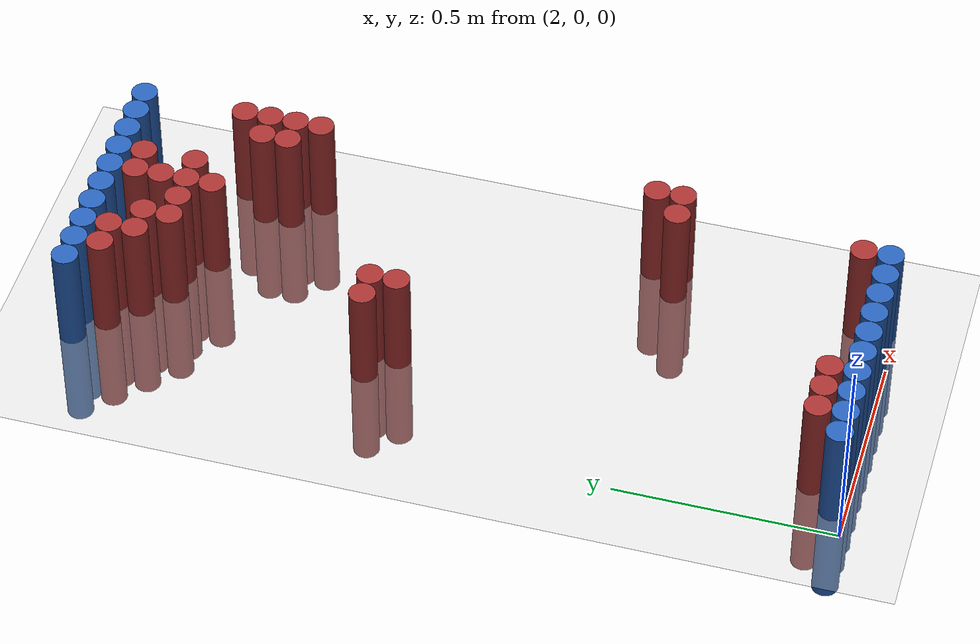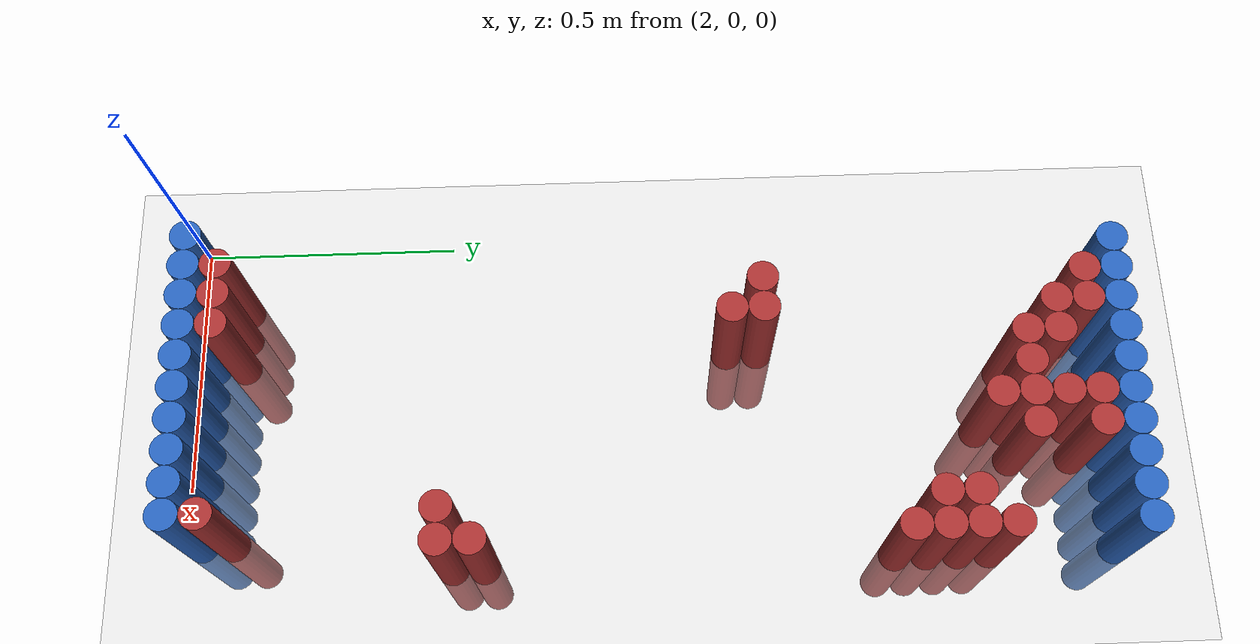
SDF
<sdf version="1.6">
 <world name="default">
  <model name="ground_plane">
   <static>1</static>
   <link name="link">
    <collision name="collision">
     <geometry><plane><normal>0 0 1</normal><size>100 100</size></plane></geometry>
     <surface><friction><ode><mu>100</mu><mu2>50</mu2></ode></friction></surface>
    </collision>
    <visual name="visual">
     <cast_shadows>0</cast_shadows>
     <geometry><plane><normal>0 0 1</normal><size>100 100</size></plane></geometry>
     <material>
      <script><uri>file://media/materials/scripts/gazebo.material</uri><name>Gazebo/Grey</name></script>
     </material>
    </visual>
   </link>
  </model>
  <model name="unit_cylinder_96">
   <static>1</static>
   <pose>2.130000 1.770000 0.000000 0.000000 0.000000 0.000000</pose>
   <link name="link">
    <inertial>
     <mass>1</mass>
     <inertia><ixx>0.145833</ixx><ixy>0</ixy><ixz>0</ixz><iyy>0.145833</iyy><iyz>0</iyz><izz>0.125</izz></inertia>
    </inertial>
    <collision name="collision">
     <geometry><cylinder><radius>0.030000</radius><length>0.5</length></cylinder></geometry>
    </collision>
    <visual name="visual">
     <geometry><cylinder><radius>0.030000</radius><length>0.5</length></cylinder></geometry>
     <material>
      <ambient>0.152000 0.379000 0.720000 1</ambient>
      <diffuse>0.152000 0.379000 0.720000 1</diffuse>
     </material>
     <material>
      <script><name>Gazebo/Grey</name><uri>file://media/materials/scripts/gazebo.material</uri></script>
     </material>
    </visual>
   </link>
  </model>
  <model name="unit_cylinder_97">
   <static>1</static>
   <pose>2.190000 1.770000 0.000000 0.000000 0.000000 0.000000</pose>
   <link name="link">
    <inertial>
     <mass>1</mass>
     <inertia><ixx>0.145833</ixx><ixy>0</ixy><ixz>0</ixz><iyy>0.145833</iyy><iyz>0</iyz><izz>0.125</izz></inertia>
    </inertial>
    <collision name="collision">
     <geometry><cylinder><radius>0.030000</radius><length>0.5</length></cylinder></geometry>
    </collision>
    <visual name="visual">
     <geometry><cylinder><radius>0.030000</radius><length>0.5</length></cylinder></geometry>
     <material>
      <ambient>0.152000 0.379000 0.720000 1</ambient>
      <diffuse>0.152000 0.379000 0.720000 1</diffuse>
     </material>
     <material>
      <script><name>Gazebo/Grey</name><uri>file://media/materials/scripts/gazebo.material</uri></script>
     </material>
    </visual>
   </link>
  </model>
  <model name="unit_cylinder_98">
   <static>1</static>
   <pose>2.250000 1.770000 0.000000 0.000000 0.000000 0.000000</pose>
   <link name="link">
    <inertial>
     <mass>1</mass>
     <inertia><ixx>0.145833</ixx><ixy>0</ixy><ixz>0</ixz><iyy>0.145833</iyy><iyz>0</iyz><izz>0.125</izz></inertia>
    </inertial>
    <collision name="collision">
     <geometry><cylinder><radius>0.030000</radius><length>0.5</length></cylinder></geometry>
    </collision>
    <visual name="visual">
     <geometry><cylinder><radius>0.030000</radius><length>0.5</length></cylinder></geometry>
     <material>
      <ambient>0.152000 0.379000 0.720000 1</ambient>
      <diffuse>0.152000 0.379000 0.720000 1</diffuse>
     </material>
     <material>
      <script><name>Gazebo/Grey</name><uri>file://media/materials/scripts/gazebo.material</uri></script>
     </material>
    </visual>
   </link>
  </model>
  <model name="unit_cylinder_99">
   <static>1</static>
   <pose>2.310000 1.770000 0.000000 0.000000 0.000000 0.000000</pose>
   <link name="link">
    <inertial>
     <mass>1</mass>
     <inertia><ixx>0.145833</ixx><ixy>0</ixy><ixz>0</ixz><iyy>0.145833</iyy><iyz>0</iyz><izz>0.125</izz></inertia>
    </inertial>
    <collision name="collision">
     <geometry><cylinder><radius>0.030000</radius><length>0.5</length></cylinder></geometry>
    </collision>
    <visual name="visual">
     <geometry><cylinder><radius>0.030000</radius><length>0.5</length></cylinder></geometry>
     <material>
      <ambient>0.152000 0.379000 0.720000 1</ambient>
      <diffuse>0.152000 0.379000 0.720000 1</diffuse>
     </material>
     <material>
      <script><name>Gazebo/Grey</name><uri>file://media/materials/scripts/gazebo.material</uri></script>
     </material>
    </visual>
   </link>
  </model>
  <model name="unit_cylinder_100">
   <static>1</static>
   <pose>2.370000 1.770000 0.000000 0.000000 0.000000 0.000000</pose>
   <link name="link">
    <inertial>
     <mass>1</mass>
     <inertia><ixx>0.145833</ixx><ixy>0</ixy><ixz>0</ixz><iyy>0.145833</iyy><iyz>0</iyz><izz>0.125</izz></inertia>
    </inertial>
    <collision name="collision">
     <geometry><cylinder><radius>0.030000</radius><length>0.5</length></cylinder></geometry>
    </collision>
    <visual name="visual">
     <geometry><cylinder><radius>0.030000</radius><length>0.5</length></cylinder></geometry>
     <material>
      <ambient>0.152000 0.379000 0.720000 1</ambient>
      <diffuse>0.152000 0.379000 0.720000 1</diffuse>
     </material>
     <material>
      <script><name>Gazebo/Grey</name><uri>file://media/materials/scripts/gazebo.material</uri></script>
     </material>
    </visual>
   </link>
  </model>
  <model name="unit_cylinder_101">
   <static>1</static>
   <pose>2.430000 1.770000 0.000000 0.000000 0.000000 0.000000</pose>
   <link name="link">
    <inertial>
     <mass>1</mass>
     <inertia><ixx>0.145833</ixx><ixy>0</ixy><ixz>0</ixz><iyy>0.145833</iyy><iyz>0</iyz><izz>0.125</izz></inertia>
    </inertial>
    <collision name="collision">
     <geometry><cylinder><radius>0.030000</radius><length>0.5</length></cylinder></geometry>
    </collision>
    <visual name="visual">
     <geometry><cylinder><radius>0.030000</radius><length>0.5</length></cylinder></geometry>
     <material>
      <ambient>0.152000 0.379000 0.720000 1</ambient>
      <diffuse>0.152000 0.379000 0.720000 1</diffuse>
     </material>
     <material>
      <script><name>Gazebo/Grey</name><uri>file://media/materials/scripts/gazebo.material</uri></script>
     </material>
    </visual>
   </link>
  </model>
  <model name="unit_cylinder_102">
   <static>1</static>
   <pose>2.490000 1.770000 0.000000 0.000000 0.000000 0.000000</pose>
   <link name="link">
    <inertial>
     <mass>1</mass>
     <inertia><ixx>0.145833</ixx><ixy>0</ixy><ixz>0</ixz><iyy>0.145833</iyy><iyz>0</iyz><izz>0.125</izz></inertia>
    </inertial>
    <collision name="collision">
     <geometry><cylinder><radius>0.030000</radius><length>0.5</length></cylinder></geometry>
    </collision>
    <visual name="visual">
     <geometry><cylinder><radius>0.030000</radius><length>0.5</length></cylinder></geometry>
     <material>
      <ambient>0.152000 0.379000 0.720000 1</ambient>
      <diffuse>0.152000 0.379000 0.720000 1</diffuse>
     </material>
     <material>
      <script><name>Gazebo/Grey</name><uri>file://media/materials/scripts/gazebo.material</uri></script>
     </material>
    </visual>
   </link>
  </model>
  <model name="unit_cylinder_103">
   <static>1</static>
   <pose>2.550000 1.770000 0.000000 0.000000 0.000000 0.000000</pose>
   <link name="link">
    <inertial>
     <mass>1</mass>
     <inertia><ixx>0.145833</ixx><ixy>0</ixy><ixz>0</ixz><iyy>0.145833</iyy><iyz>0</iyz><izz>0.125</izz></inertia>
    </inertial>
    <collision name="collision">
     <geometry><cylinder><radius>0.030000</radius><length>0.5</length></cylinder></geometry>
    </collision>
    <visual name="visual">
     <geometry><cylinder><radius>0.030000</radius><length>0.5</length></cylinder></geometry>
     <material>
      <ambient>0.152000 0.379000 0.720000 1</ambient>
      <diffuse>0.152000 0.379000 0.720000 1</diffuse>
     </material>
     <material>
      <script><name>Gazebo/Grey</name><uri>file://media/materials/scripts/gazebo.material</uri></script>
     </material>
    </visual>
   </link>
  </model>
  <model name="unit_cylinder_104">
   <static>1</static>
   <pose>2.610000 1.770000 0.000000 0.000000 0.000000 0.000000</pose>
   <link name="link">
    <inertial>
     <mass>1</mass>
     <inertia><ixx>0.145833</ixx><ixy>0</ixy><ixz>0</ixz><iyy>0.145833</iyy><iyz>0</iyz><izz>0.125</izz></inertia>
    </inertial>
    <collision name="collision">
     <geometry><cylinder><radius>0.030000</radius><length>0.5</length></cylinder></geometry>
    </collision>
    <visual name="visual">
     <geometry><cylinder><radius>0.030000</radius><length>0.5</length></cylinder></geometry>
     <material>
      <ambient>0.152000 0.379000 0.720000 1</ambient>
      <diffuse>0.152000 0.379000 0.720000 1</diffuse>
     </material>
     <material>
      <script><name>Gazebo/Grey</name><uri>file://media/materials/scripts/gazebo.material</uri></script>
     </material>
    </visual>
   </link>
  </model>
  <model name="unit_cylinder_105">
   <static>1</static>
   <pose>2.670000 1.770000 0.000000 0.000000 0.000000 0.000000</pose>
   <link name="link">
    <inertial>
     <mass>1</mass>
     <inertia><ixx>0.145833</ixx><ixy>0</ixy><ixz>0</ixz><iyy>0.145833</iyy><iyz>0</iyz><izz>0.125</izz></inertia>
    </inertial>
    <collision name="collision">
     <geometry><cylinder><radius>0.030000</radius><length>0.5</length></cylinder></geometry>
    </collision>
    <visual name="visual">
     <geometry><cylinder><radius>0.030000</radius><length>0.5</length></cylinder></geometry>
     <material>
      <ambient>0.152000 0.379000 0.720000 1</ambient>
      <diffuse>0.152000 0.379000 0.720000 1</diffuse>
     </material>
     <material>
      <script><name>Gazebo/Grey</name><uri>file://media/materials/scripts/gazebo.material</uri></script>
     </material>
    </visual>
   </link>
  </model>
  <model name="unit_cylinder_125">
   <static>1</static>
   <pose>2.190000 1.710000 0.000000 0.000000 0.000000 0.000000</pose>
   <link name="link">
    <inertial>
     <mass>1</mass>
     <inertia><ixx>0.145833</ixx><ixy>0</ixy><ixz>0</ixz><iyy>0.145833</iyy><iyz>0</iyz><izz>0.125</izz></inertia>
    </inertial>
    <collision name="collision">
     <geometry><cylinder><radius>0.030000</radius><length>0.5</length></cylinder></geometry>
    </collision>
    <visual name="visual">
     <geometry><cylinder><radius>0.030000</radius><length>0.5</length></cylinder></geometry>
     <material>
      <ambient>0.648000 0.192000 0.192000 1</ambient>
      <diffuse>0.648000 0.192000 0.192000 1</diffuse>
     </material>
     <material>
      <script><name>Gazebo/Grey</name><uri>file://media/materials/scripts/gazebo.material</uri></script>
     </material>
    </visual>
   </link>
  </model>
  <model name="unit_cylinder_126">
   <static>1</static>
   <pose>2.250000 1.710000 0.000000 0.000000 0.000000 0.000000</pose>
   <link name="link">
    <inertial>
     <mass>1</mass>
     <inertia><ixx>0.145833</ixx><ixy>0</ixy><ixz>0</ixz><iyy>0.145833</iyy><iyz>0</iyz><izz>0.125</izz></inertia>
    </inertial>
    <collision name="collision">
     <geometry><cylinder><radius>0.030000</radius><length>0.5</length></cylinder></geometry>
    </collision>
    <visual name="visual">
     <geometry><cylinder><radius>0.030000</radius><length>0.5</length></cylinder></geometry>
     <material>
      <ambient>0.648000 0.192000 0.192000 1</ambient>
      <diffuse>0.648000 0.192000 0.192000 1</diffuse>
     </material>
     <material>
      <script><name>Gazebo/Grey</name><uri>file://media/materials/scripts/gazebo.material</uri></script>
     </material>
    </visual>
   </link>
  </model>
  <model name="unit_cylinder_127">
   <static>1</static>
   <pose>2.430000 1.710000 0.000000 0.000000 0.000000 0.000000</pose>
   <link name="link">
    <inertial>
     <mass>1</mass>
     <inertia><ixx>0.145833</ixx><ixy>0</ixy><ixz>0</ixz><iyy>0.145833</iyy><iyz>0</iyz><izz>0.125</izz></inertia>
    </inertial>
    <collision name="collision">
     <geometry><cylinder><radius>0.030000</radius><length>0.5</length></cylinder></geometry>
    </collision>
    <visual name="visual">
     <geometry><cylinder><radius>0.030000</radius><length>0.5</length></cylinder></geometry>
     <material>
      <ambient>0.648000 0.192000 0.192000 1</ambient>
      <diffuse>0.648000 0.192000 0.192000 1</diffuse>
     </material>
     <material>
      <script><name>Gazebo/Grey</name><uri>file://media/materials/scripts/gazebo.material</uri></script>
     </material>
    </visual>
   </link>
  </model>
  <model name="unit_cylinder_128">
   <static>1</static>
   <pose>2.490000 1.710000 0.000000 0.000000 0.000000 0.000000</pose>
   <link name="link">
    <inertial>
     <mass>1</mass>
     <inertia><ixx>0.145833</ixx><ixy>0</ixy><ixz>0</ixz><iyy>0.145833</iyy><iyz>0</iyz><izz>0.125</izz></inertia>
    </inertial>
    <collision name="collision">
     <geometry><cylinder><radius>0.030000</radius><length>0.5</length></cylinder></geometry>
    </collision>
    <visual name="visual">
     <geometry><cylinder><radius>0.030000</radius><length>0.5</length></cylinder></geometry>
     <material>
      <ambient>0.648000 0.192000 0.192000 1</ambient>
      <diffuse>0.648000 0.192000 0.192000 1</diffuse>
     </material>
     <material>
      <script><name>Gazebo/Grey</name><uri>file://media/materials/scripts/gazebo.material</uri></script>
     </material>
    </visual>
   </link>
  </model>
  <model name="unit_cylinder_137">
   <static>1</static>
   <pose>2.250000 1.650000 0.000000 0.000000 0.000000 0.000000</pose>
   <link name="link">
    <inertial>
     <mass>1</mass>
     <inertia><ixx>0.145833</ixx><ixy>0</ixy><ixz>0</ixz><iyy>0.145833</iyy><iyz>0</iyz><izz>0.125</izz></inertia>
    </inertial>
    <collision name="collision">
     <geometry><cylinder><radius>0.030000</radius><length>0.5</length></cylinder></geometry>
    </collision>
    <visual name="visual">
     <geometry><cylinder><radius>0.030000</radius><length>0.5</length></cylinder></geometry>
     <material>
      <ambient>0.648000 0.192000 0.192000 1</ambient>
      <diffuse>0.648000 0.192000 0.192000 1</diffuse>
     </material>
     <material>
      <script><name>Gazebo/Grey</name><uri>file://media/materials/scripts/gazebo.material</uri></script>
     </material>
    </visual>
   </link>
  </model>
  <model name="unit_cylinder_138">
   <static>1</static>
   <pose>2.310000 1.650000 0.000000 0.000000 0.000000 0.000000</pose>
   <link name="link">
    <inertial>
     <mass>1</mass>
     <inertia><ixx>0.145833</ixx><ixy>0</ixy><ixz>0</ixz><iyy>0.145833</iyy><iyz>0</iyz><izz>0.125</izz></inertia>
    </inertial>
    <collision name="collision">
     <geometry><cylinder><radius>0.030000</radius><length>0.5</length></cylinder></geometry>
    </collision>
    <visual name="visual">
     <geometry><cylinder><radius>0.030000</radius><length>0.5</length></cylinder></geometry>
     <material>
      <ambient>0.648000 0.192000 0.192000 1</ambient>
      <diffuse>0.648000 0.192000 0.192000 1</diffuse>
     </material>
     <material>
      <script><name>Gazebo/Grey</name><uri>file://media/materials/scripts/gazebo.material</uri></script>
     </material>
    </visual>
   </link>
  </model>
  <model name="unit_cylinder_139">
   <static>1</static>
   <pose>2.430000 1.650000 0.000000 0.000000 0.000000 0.000000</pose>
   <link name="link">
    <inertial>
     <mass>1</mass>
     <inertia><ixx>0.145833</ixx><ixy>0</ixy><ixz>0</ixz><iyy>0.145833</iyy><iyz>0</iyz><izz>0.125</izz></inertia>
    </inertial>
    <collision name="collision">
     <geometry><cylinder><radius>0.030000</radius><length>0.5</length></cylinder></geometry>
    </collision>
    <visual name="visual">
     <geometry><cylinder><radius>0.030000</radius><length>0.5</length></cylinder></geometry>
     <material>
      <ambient>0.648000 0.192000 0.192000 1</ambient>
      <diffuse>0.648000 0.192000 0.192000 1</diffuse>
     </material>
     <material>
      <script><name>Gazebo/Grey</name><uri>file://media/materials/scripts/gazebo.material</uri></script>
     </material>
    </visual>
   </link>
  </model>
  <model name="unit_cylinder_141">
   <static>1</static>
   <pose>2.310000 1.590000 0.000000 0.000000 0.000000 0.000000</pose>
   <link name="link">
    <inertial>
     <mass>1</mass>
     <inertia><ixx>0.145833</ixx><ixy>0</ixy><ixz>0</ixz><iyy>0.145833</iyy><iyz>0</iyz><izz>0.125</izz></inertia>
    </inertial>
    <collision name="collision">
     <geometry><cylinder><radius>0.030000</radius><length>0.5</length></cylinder></geometry>
    </collision>
    <visual name="visual">
     <geometry><cylinder><radius>0.030000</radius><length>0.5</length></cylinder></geometry>
     <material>
      <ambient>0.648000 0.192000 0.192000 1</ambient>
      <diffuse>0.648000 0.192000 0.192000 1</diffuse>
     </material>
     <material>
      <script><name>Gazebo/Grey</name><uri>file://media/materials/scripts/gazebo.material</uri></script>
     </material>
    </visual>
   </link>
  </model>
  <model name="unit_cylinder_142">
   <static>1</static>
   <pose>2.370000 1.590000 0.000000 0.000000 0.000000 0.000000</pose>
   <link name="link">
    <inertial>
     <mass>1</mass>
     <inertia><ixx>0.145833</ixx><ixy>0</ixy><ixz>0</ixz><iyy>0.145833</iyy><iyz>0</iyz><izz>0.125</izz></inertia>
    </inertial>
    <collision name="collision">
     <geometry><cylinder><radius>0.030000</radius><length>0.5</length></cylinder></geometry>
    </collision>
    <visual name="visual">
     <geometry><cylinder><radius>0.030000</radius><length>0.5</length></cylinder></geometry>
     <material>
      <ambient>0.648000 0.192000 0.192000 1</ambient>
      <diffuse>0.648000 0.192000 0.192000 1</diffuse>
     </material>
     <material>
      <script><name>Gazebo/Grey</name><uri>file://media/materials/scripts/gazebo.material</uri></script>
     </material>
    </visual>
   </link>
  </model>
  <model name="unit_cylinder_143">
   <static>1</static>
   <pose>2.430000 1.590000 0.000000 0.000000 0.000000 0.000000</pose>
   <link name="link">
    <inertial>
     <mass>1</mass>
     <inertia><ixx>0.145833</ixx><ixy>0</ixy><ixz>0</ixz><iyy>0.145833</iyy><iyz>0</iyz><izz>0.125</izz></inertia>
    </inertial>
    <collision name="collision">
     <geometry><cylinder><radius>0.030000</radius><length>0.5</length></cylinder></geometry>
    </collision>
    <visual name="visual">
     <geometry><cylinder><radius>0.030000</radius><length>0.5</length></cylinder></geometry>
     <material>
      <ambient>0.648000 0.192000 0.192000 1</ambient>
      <diffuse>0.648000 0.192000 0.192000 1</diffuse>
     </material>
     <material>
      <script><name>Gazebo/Grey</name><uri>file://media/materials/scripts/gazebo.material</uri></script>
     </material>
    </visual>
   </link>
  </model>
  <model name="unit_cylinder_144">
   <static>1</static>
   <pose>2.490000 1.590000 0.000000 0.000000 0.000000 0.000000</pose>
   <link name="link">
    <inertial>
     <mass>1</mass>
     <inertia><ixx>0.145833</ixx><ixy>0</ixy><ixz>0</ixz><iyy>0.145833</iyy><iyz>0</iyz><izz>0.125</izz></inertia>
    </inertial>
    <collision name="collision">
     <geometry><cylinder><radius>0.030000</radius><length>0.5</length></cylinder></geometry>
    </collision>
    <visual name="visual">
     <geometry><cylinder><radius>0.030000</radius><length>0.5</length></cylinder></geometry>
     <material>
      <ambient>0.648000 0.192000 0.192000 1</ambient>
      <diffuse>0.648000 0.192000 0.192000 1</diffuse>
     </material>
     <material>
      <script><name>Gazebo/Grey</name><uri>file://media/materials/scripts/gazebo.material</uri></script>
     </material>
    </visual>
   </link>
  </model>
  <model name="unit_cylinder_145">
   <static>1</static>
   <pose>2.430000 1.530000 0.000000 0.000000 0.000000 0.000000</pose>
   <link name="link">
    <inertial>
     <mass>1</mass>
     <inertia><ixx>0.145833</ixx><ixy>0</ixy><ixz>0</ixz><iyy>0.145833</iyy><iyz>0</iyz><izz>0.125</izz></inertia>
    </inertial>
    <collision name="collision">
     <geometry><cylinder><radius>0.030000</radius><length>0.5</length></cylinder></geometry>
    </collision>
    <visual name="visual">
     <geometry><cylinder><radius>0.030000</radius><length>0.5</length></cylinder></geometry>
     <material>
      <ambient>0.648000 0.192000 0.192000 1</ambient>
      <diffuse>0.648000 0.192000 0.192000 1</diffuse>
     </material>
     <material>
      <script><name>Gazebo/Grey</name><uri>file://media/materials/scripts/gazebo.material</uri></script>
     </material>
    </visual>
   </link>
  </model>
  <model name="unit_cylinder_146">
   <static>1</static>
   <pose>2.670000 1.530000 0.000000 0.000000 0.000000 0.000000</pose>
   <link name="link">
    <inertial>
     <mass>1</mass>
     <inertia><ixx>0.145833</ixx><ixy>0</ixy><ixz>0</ixz><iyy>0.145833</iyy><iyz>0</iyz><izz>0.125</izz></inertia>
    </inertial>
    <collision name="collision">
     <geometry><cylinder><radius>0.030000</radius><length>0.5</length></cylinder></geometry>
    </collision>
    <visual name="visual">
     <geometry><cylinder><radius>0.030000</radius><length>0.5</length></cylinder></geometry>
     <material>
      <ambient>0.648000 0.192000 0.192000 1</ambient>
      <diffuse>0.648000 0.192000 0.192000 1</diffuse>
     </material>
     <material>
      <script><name>Gazebo/Grey</name><uri>file://media/materials/scripts/gazebo.material</uri></script>
     </material>
    </visual>
   </link>
  </model>
  <model name="unit_cylinder_151">
   <static>1</static>
   <pose>2.610000 1.470000 0.000000 0.000000 0.000000 0.000000</pose>
   <link name="link">
    <inertial>
     <mass>1</mass>
     <inertia><ixx>0.145833</ixx><ixy>0</ixy><ixz>0</ixz><iyy>0.145833</iyy><iyz>0</iyz><izz>0.125</izz></inertia>
    </inertial>
    <collision name="collision">
     <geometry><cylinder><radius>0.030000</radius><length>0.5</length></cylinder></geometry>
    </collision>
    <visual name="visual">
     <geometry><cylinder><radius>0.030000</radius><length>0.5</length></cylinder></geometry>
     <material>
      <ambient>0.648000 0.192000 0.192000 1</ambient>
      <diffuse>0.648000 0.192000 0.192000 1</diffuse>
     </material>
     <material>
      <script><name>Gazebo/Grey</name><uri>file://media/materials/scripts/gazebo.material</uri></script>
     </material>
    </visual>
   </link>
  </model>
  <model name="unit_cylinder_152">
   <static>1</static>
   <pose>2.670000 1.470000 0.000000 0.000000 0.000000 0.000000</pose>
   <link name="link">
    <inertial>
     <mass>1</mass>
     <inertia><ixx>0.145833</ixx><ixy>0</ixy><ixz>0</ixz><iyy>0.145833</iyy><iyz>0</iyz><izz>0.125</izz></inertia>
    </inertial>
    <collision name="collision">
     <geometry><cylinder><radius>0.030000</radius><length>0.5</length></cylinder></geometry>
    </collision>
    <visual name="visual">
     <geometry><cylinder><radius>0.030000</radius><length>0.5</length></cylinder></geometry>
     <material>
      <ambient>0.648000 0.192000 0.192000 1</ambient>
      <diffuse>0.648000 0.192000 0.192000 1</diffuse>
     </material>
     <material>
      <script><name>Gazebo/Grey</name><uri>file://media/materials/scripts/gazebo.material</uri></script>
     </material>
    </visual>
   </link>
  </model>
  <model name="unit_cylinder_160">
   <static>1</static>
   <pose>2.610000 1.410000 0.000000 0.000000 0.000000 0.000000</pose>
   <link name="link">
    <inertial>
     <mass>1</mass>
     <inertia><ixx>0.145833</ixx><ixy>0</ixy><ixz>0</ixz><iyy>0.145833</iyy><iyz>0</iyz><izz>0.125</izz></inertia>
    </inertial>
    <collision name="collision">
     <geometry><cylinder><radius>0.030000</radius><length>0.5</length></cylinder></geometry>
    </collision>
    <visual name="visual">
     <geometry><cylinder><radius>0.030000</radius><length>0.5</length></cylinder></geometry>
     <material>
      <ambient>0.648000 0.192000 0.192000 1</ambient>
      <diffuse>0.648000 0.192000 0.192000 1</diffuse>
     </material>
     <material>
      <script><name>Gazebo/Grey</name><uri>file://media/materials/scripts/gazebo.material</uri></script>
     </material>
    </visual>
   </link>
  </model>
  <model name="unit_cylinder_161">
   <static>1</static>
   <pose>2.670000 1.410000 0.000000 0.000000 0.000000 0.000000</pose>
   <link name="link">
    <inertial>
     <mass>1</mass>
     <inertia><ixx>0.145833</ixx><ixy>0</ixy><ixz>0</ixz><iyy>0.145833</iyy><iyz>0</iyz><izz>0.125</izz></inertia>
    </inertial>
    <collision name="collision">
     <geometry><cylinder><radius>0.030000</radius><length>0.5</length></cylinder></geometry>
    </collision>
    <visual name="visual">
     <geometry><cylinder><radius>0.030000</radius><length>0.5</length></cylinder></geometry>
     <material>
      <ambient>0.648000 0.192000 0.192000 1</ambient>
      <diffuse>0.648000 0.192000 0.192000 1</diffuse>
     </material>
     <material>
      <script><name>Gazebo/Grey</name><uri>file://media/materials/scripts/gazebo.material</uri></script>
     </material>
    </visual>
   </link>
  </model>
  <model name="unit_cylinder_164">
   <static>1</static>
   <pose>2.670000 1.350000 0.000000 0.000000 0.000000 0.000000</pose>
   <link name="link">
    <inertial>
     <mass>1</mass>
     <inertia><ixx>0.145833</ixx><ixy>0</ixy><ixz>0</ixz><iyy>0.145833</iyy><iyz>0</iyz><izz>0.125</izz></inertia>
    </inertial>
    <collision name="collision">
     <geometry><cylinder><radius>0.030000</radius><length>0.5</length></cylinder></geometry>
    </collision>
    <visual name="visual">
     <geometry><cylinder><radius>0.030000</radius><length>0.5</length></cylinder></geometry>
     <material>
      <ambient>0.648000 0.192000 0.192000 1</ambient>
      <diffuse>0.648000 0.192000 0.192000 1</diffuse>
     </material>
     <material>
      <script><name>Gazebo/Grey</name><uri>file://media/materials/scripts/gazebo.material</uri></script>
     </material>
    </visual>
   </link>
  </model>
  <model name="unit_cylinder_169">
   <static>1</static>
   <pose>2.190000 1.110000 0.000000 0.000000 0.000000 0.000000</pose>
   <link name="link">
    <inertial>
     <mass>1</mass>
     <inertia><ixx>0.145833</ixx><ixy>0</ixy><ixz>0</ixz><iyy>0.145833</iyy><iyz>0</iyz><izz>0.125</izz></inertia>
    </inertial>
    <collision name="collision">
     <geometry><cylinder><radius>0.030000</radius><length>0.5</length></cylinder></geometry>
    </collision>
    <visual name="visual">
     <geometry><cylinder><radius>0.030000</radius><length>0.5</length></cylinder></geometry>
     <material>
      <ambient>0.648000 0.192000 0.192000 1</ambient>
      <diffuse>0.648000 0.192000 0.192000 1</diffuse>
     </material>
     <material>
      <script><name>Gazebo/Grey</name><uri>file://media/materials/scripts/gazebo.material</uri></script>
     </material>
    </visual>
   </link>
  </model>
  <model name="unit_cylinder_170">
   <static>1</static>
   <pose>2.250000 1.110000 0.000000 0.000000 0.000000 0.000000</pose>
   <link name="link">
    <inertial>
     <mass>1</mass>
     <inertia><ixx>0.145833</ixx><ixy>0</ixy><ixz>0</ixz><iyy>0.145833</iyy><iyz>0</iyz><izz>0.125</izz></inertia>
    </inertial>
    <collision name="collision">
     <geometry><cylinder><radius>0.030000</radius><length>0.5</length></cylinder></geometry>
    </collision>
    <visual name="visual">
     <geometry><cylinder><radius>0.030000</radius><length>0.5</length></cylinder></geometry>
     <material>
      <ambient>0.648000 0.192000 0.192000 1</ambient>
      <diffuse>0.648000 0.192000 0.192000 1</diffuse>
     </material>
     <material>
      <script><name>Gazebo/Grey</name><uri>file://media/materials/scripts/gazebo.material</uri></script>
     </material>
    </visual>
   </link>
  </model>
  <model name="unit_cylinder_171">
   <static>1</static>
   <pose>2.250000 1.050000 0.000000 0.000000 0.000000 0.000000</pose>
   <link name="link">
    <inertial>
     <mass>1</mass>
     <inertia><ixx>0.145833</ixx><ixy>0</ixy><ixz>0</ixz><iyy>0.145833</iyy><iyz>0</iyz><izz>0.125</izz></inertia>
    </inertial>
    <collision name="collision">
     <geometry><cylinder><radius>0.030000</radius><length>0.5</length></cylinder></geometry>
    </collision>
    <visual name="visual">
     <geometry><cylinder><radius>0.030000</radius><length>0.5</length></cylinder></geometry>
     <material>
      <ambient>0.648000 0.192000 0.192000 1</ambient>
      <diffuse>0.648000 0.192000 0.192000 1</diffuse>
     </material>
     <material>
      <script><name>Gazebo/Grey</name><uri>file://media/materials/scripts/gazebo.material</uri></script>
     </material>
    </visual>
   </link>
  </model>
  <model name="unit_cylinder_182">
   <static>1</static>
   <pose>2.670000 0.570000 0.000000 0.000000 0.000000 0.000000</pose>
   <link name="link">
    <inertial>
     <mass>1</mass>
     <inertia><ixx>0.145833</ixx><ixy>0</ixy><ixz>0</ixz><iyy>0.145833</iyy><iyz>0</iyz><izz>0.125</izz></inertia>
    </inertial>
    <collision name="collision">
     <geometry><cylinder><radius>0.030000</radius><length>0.5</length></cylinder></geometry>
    </collision>
    <visual name="visual">
     <geometry><cylinder><radius>0.030000</radius><length>0.5</length></cylinder></geometry>
     <material>
      <ambient>0.648000 0.192000 0.192000 1</ambient>
      <diffuse>0.648000 0.192000 0.192000 1</diffuse>
     </material>
     <material>
      <script><name>Gazebo/Grey</name><uri>file://media/materials/scripts/gazebo.material</uri></script>
     </material>
    </visual>
   </link>
  </model>
  <model name="unit_cylinder_183">
   <static>1</static>
   <pose>2.610000 0.510000 0.000000 0.000000 0.000000 0.000000</pose>
   <link name="link">
    <inertial>
     <mass>1</mass>
     <inertia><ixx>0.145833</ixx><ixy>0</ixy><ixz>0</ixz><iyy>0.145833</iyy><iyz>0</iyz><izz>0.125</izz></inertia>
    </inertial>
    <collision name="collision">
     <geometry><cylinder><radius>0.030000</radius><length>0.5</length></cylinder></geometry>
    </collision>
    <visual name="visual">
     <geometry><cylinder><radius>0.030000</radius><length>0.5</length></cylinder></geometry>
     <material>
      <ambient>0.648000 0.192000 0.192000 1</ambient>
      <diffuse>0.648000 0.192000 0.192000 1</diffuse>
     </material>
     <material>
      <script><name>Gazebo/Grey</name><uri>file://media/materials/scripts/gazebo.material</uri></script>
     </material>
    </visual>
   </link>
  </model>
  <model name="unit_cylinder_184">
   <static>1</static>
   <pose>2.670000 0.510000 0.000000 0.000000 0.000000 0.000000</pose>
   <link name="link">
    <inertial>
     <mass>1</mass>
     <inertia><ixx>0.145833</ixx><ixy>0</ixy><ixz>0</ixz><iyy>0.145833</iyy><iyz>0</iyz><izz>0.125</izz></inertia>
    </inertial>
    <collision name="collision">
     <geometry><cylinder><radius>0.030000</radius><length>0.5</length></cylinder></geometry>
    </collision>
    <visual name="visual">
     <geometry><cylinder><radius>0.030000</radius><length>0.5</length></cylinder></geometry>
     <material>
      <ambient>0.648000 0.192000 0.192000 1</ambient>
      <diffuse>0.648000 0.192000 0.192000 1</diffuse>
     </material>
     <material>
      <script><name>Gazebo/Grey</name><uri>file://media/materials/scripts/gazebo.material</uri></script>
     </material>
    </visual>
   </link>
  </model>
  <model name="unit_cylinder_199">
   <static>1</static>
   <pose>2.130000 0.090000 0.000000 0.000000 0.000000 0.000000</pose>
   <link name="link">
    <inertial>
     <mass>1</mass>
     <inertia><ixx>0.145833</ixx><ixy>0</ixy><ixz>0</ixz><iyy>0.145833</iyy><iyz>0</iyz><izz>0.125</izz></inertia>
    </inertial>
    <collision name="collision">
     <geometry><cylinder><radius>0.030000</radius><length>0.5</length></cylinder></geometry>
    </collision>
    <visual name="visual">
     <geometry><cylinder><radius>0.030000</radius><length>0.5</length></cylinder></geometry>
     <material>
      <ambient>0.648000 0.192000 0.192000 1</ambient>
      <diffuse>0.648000 0.192000 0.192000 1</diffuse>
     </material>
     <material>
      <script><name>Gazebo/Grey</name><uri>file://media/materials/scripts/gazebo.material</uri></script>
     </material>
    </visual>
   </link>
  </model>
  <model name="unit_cylinder_200">
   <static>1</static>
   <pose>2.190000 0.090000 0.000000 0.000000 0.000000 0.000000</pose>
   <link name="link">
    <inertial>
     <mass>1</mass>
     <inertia><ixx>0.145833</ixx><ixy>0</ixy><ixz>0</ixz><iyy>0.145833</iyy><iyz>0</iyz><izz>0.125</izz></inertia>
    </inertial>
    <collision name="collision">
     <geometry><cylinder><radius>0.030000</radius><length>0.5</length></cylinder></geometry>
    </collision>
    <visual name="visual">
     <geometry><cylinder><radius>0.030000</radius><length>0.5</length></cylinder></geometry>
     <material>
      <ambient>0.648000 0.192000 0.192000 1</ambient>
      <diffuse>0.648000 0.192000 0.192000 1</diffuse>
     </material>
     <material>
      <script><name>Gazebo/Grey</name><uri>file://media/materials/scripts/gazebo.material</uri></script>
     </material>
    </visual>
   </link>
  </model>
  <model name="unit_cylinder_201">
   <static>1</static>
   <pose>2.250000 0.090000 0.000000 0.000000 0.000000 0.000000</pose>
   <link name="link">
    <inertial>
     <mass>1</mass>
     <inertia><ixx>0.145833</ixx><ixy>0</ixy><ixz>0</ixz><iyy>0.145833</iyy><iyz>0</iyz><izz>0.125</izz></inertia>
    </inertial>
    <collision name="collision">
     <geometry><cylinder><radius>0.030000</radius><length>0.5</length></cylinder></geometry>
    </collision>
    <visual name="visual">
     <geometry><cylinder><radius>0.030000</radius><length>0.5</length></cylinder></geometry>
     <material>
      <ambient>0.648000 0.192000 0.192000 1</ambient>
      <diffuse>0.648000 0.192000 0.192000 1</diffuse>
     </material>
     <material>
      <script><name>Gazebo/Grey</name><uri>file://media/materials/scripts/gazebo.material</uri></script>
     </material>
    </visual>
   </link>
  </model>
  <model name="unit_cylinder_202">
   <static>1</static>
   <pose>2.610000 0.090000 0.000000 0.000000 0.000000 0.000000</pose>
   <link name="link">
    <inertial>
     <mass>1</mass>
     <inertia><ixx>0.145833</ixx><ixy>0</ixy><ixz>0</ixz><iyy>0.145833</iyy><iyz>0</iyz><izz>0.125</izz></inertia>
    </inertial>
    <collision name="collision">
     <geometry><cylinder><radius>0.030000</radius><length>0.5</length></cylinder></geometry>
    </collision>
    <visual name="visual">
     <geometry><cylinder><radius>0.030000</radius><length>0.5</length></cylinder></geometry>
     <material>
      <ambient>0.648000 0.192000 0.192000 1</ambient>
      <diffuse>0.648000 0.192000 0.192000 1</diffuse>
     </material>
     <material>
      <script><name>Gazebo/Grey</name><uri>file://media/materials/scripts/gazebo.material</uri></script>
     </material>
    </visual>
   </link>
  </model>
  <model name="unit_cylinder_209">
   <static>1</static>
   <pose>2.070000 0.030000 0.000000 0.000000 0.000000 0.000000</pose>
   <link name="link">
    <inertial>
     <mass>1</mass>
     <inertia><ixx>0.145833</ixx><ixy>0</ixy><ixz>0</ixz><iyy>0.145833</iyy><iyz>0</iyz><izz>0.125</izz></inertia>
    </inertial>
    <collision name="collision">
     <geometry><cylinder><radius>0.030000</radius><length>0.5</length></cylinder></geometry>
    </collision>
    <visual name="visual">
     <geometry><cylinder><radius>0.030000</radius><length>0.5</length></cylinder></geometry>
     <material>
      <ambient>0.152000 0.379000 0.720000 1</ambient>
      <diffuse>0.152000 0.379000 0.720000 1</diffuse>
     </material>
     <material>
      <script><name>Gazebo/Grey</name><uri>file://media/materials/scripts/gazebo.material</uri></script>
     </material>
    </visual>
   </link>
  </model>
  <model name="unit_cylinder_210">
   <static>1</static>
   <pose>2.130000 0.030000 0.000000 0.000000 0.000000 0.000000</pose>
   <link name="link">
    <inertial>
     <mass>1</mass>
     <inertia><ixx>0.145833</ixx><ixy>0</ixy><ixz>0</ixz><iyy>0.145833</iyy><iyz>0</iyz><izz>0.125</izz></inertia>
    </inertial>
    <collision name="collision">
     <geometry><cylinder><radius>0.030000</radius><length>0.5</length></cylinder></geometry>
    </collision>
    <visual name="visual">
     <geometry><cylinder><radius>0.030000</radius><length>0.5</length></cylinder></geometry>
     <material>
      <ambient>0.152000 0.379000 0.720000 1</ambient>
      <diffuse>0.152000 0.379000 0.720000 1</diffuse>
     </material>
     <material>
      <script><name>Gazebo/Grey</name><uri>file://media/materials/scripts/gazebo.material</uri></script>
     </material>
    </visual>
   </link>
  </model>
  <model name="unit_cylinder_211">
   <static>1</static>
   <pose>2.190000 0.030000 0.000000 0.000000 0.000000 0.000000</pose>
   <link name="link">
    <inertial>
     <mass>1</mass>
     <inertia><ixx>0.145833</ixx><ixy>0</ixy><ixz>0</ixz><iyy>0.145833</iyy><iyz>0</iyz><izz>0.125</izz></inertia>
    </inertial>
    <collision name="collision">
     <geometry><cylinder><radius>0.030000</radius><length>0.5</length></cylinder></geometry>
    </collision>
    <visual name="visual">
     <geometry><cylinder><radius>0.030000</radius><length>0.5</length></cylinder></geometry>
     <material>
      <ambient>0.152000 0.379000 0.720000 1</ambient>
      <diffuse>0.152000 0.379000 0.720000 1</diffuse>
     </material>
     <material>
      <script><name>Gazebo/Grey</name><uri>file://media/materials/scripts/gazebo.material</uri></script>
     </material>
    </visual>
   </link>
  </model>
  <model name="unit_cylinder_212">
   <static>1</static>
   <pose>2.250000 0.030000 0.000000 0.000000 0.000000 0.000000</pose>
   <link name="link">
    <inertial>
     <mass>1</mass>
     <inertia><ixx>0.145833</ixx><ixy>0</ixy><ixz>0</ixz><iyy>0.145833</iyy><iyz>0</iyz><izz>0.125</izz></inertia>
    </inertial>
    <collision name="collision">
     <geometry><cylinder><radius>0.030000</radius><length>0.5</length></cylinder></geometry>
    </collision>
    <visual name="visual">
     <geometry><cylinder><radius>0.030000</radius><length>0.5</length></cylinder></geometry>
     <material>
      <ambient>0.152000 0.379000 0.720000 1</ambient>
      <diffuse>0.152000 0.379000 0.720000 1</diffuse>
     </material>
     <material>
      <script><name>Gazebo/Grey</name><uri>file://media/materials/scripts/gazebo.material</uri></script>
     </material>
    </visual>
   </link>
  </model>
  <model name="unit_cylinder_213">
   <static>1</static>
   <pose>2.310000 0.030000 0.000000 0.000000 0.000000 0.000000</pose>
   <link name="link">
    <inertial>
     <mass>1</mass>
     <inertia><ixx>0.145833</ixx><ixy>0</ixy><ixz>0</ixz><iyy>0.145833</iyy><iyz>0</iyz><izz>0.125</izz></inertia>
    </inertial>
    <collision name="collision">
     <geometry><cylinder><radius>0.030000</radius><length>0.5</length></cylinder></geometry>
    </collision>
    <visual name="visual">
     <geometry><cylinder><radius>0.030000</radius><length>0.5</length></cylinder></geometry>
     <material>
      <ambient>0.152000 0.379000 0.720000 1</ambient>
      <diffuse>0.152000 0.379000 0.720000 1</diffuse>
     </material>
     <material>
      <script><name>Gazebo/Grey</name><uri>file://media/materials/scripts/gazebo.material</uri></script>
     </material>
    </visual>
   </link>
  </model>
  <model name="unit_cylinder_214">
   <static>1</static>
   <pose>2.370000 0.030000 0.000000 0.000000 0.000000 0.000000</pose>
   <link name="link">
    <inertial>
     <mass>1</mass>
     <inertia><ixx>0.145833</ixx><ixy>0</ixy><ixz>0</ixz><iyy>0.145833</iyy><iyz>0</iyz><izz>0.125</izz></inertia>
    </inertial>
    <collision name="collision">
     <geometry><cylinder><radius>0.030000</radius><length>0.5</length></cylinder></geometry>
    </collision>
    <visual name="visual">
     <geometry><cylinder><radius>0.030000</radius><length>0.5</length></cylinder></geometry>
     <material>
      <ambient>0.152000 0.379000 0.720000 1</ambient>
      <diffuse>0.152000 0.379000 0.720000 1</diffuse>
     </material>
     <material>
      <script><name>Gazebo/Grey</name><uri>file://media/materials/scripts/gazebo.material</uri></script>
     </material>
    </visual>
   </link>
  </model>
  <model name="unit_cylinder_215">
   <static>1</static>
   <pose>2.430000 0.030000 0.000000 0.000000 0.000000 0.000000</pose>
   <link name="link">
    <inertial>
     <mass>1</mass>
     <inertia><ixx>0.145833</ixx><ixy>0</ixy><ixz>0</ixz><iyy>0.145833</iyy><iyz>0</iyz><izz>0.125</izz></inertia>
    </inertial>
    <collision name="collision">
     <geometry><cylinder><radius>0.030000</radius><length>0.5</length></cylinder></geometry>
    </collision>
    <visual name="visual">
     <geometry><cylinder><radius>0.030000</radius><length>0.5</length></cylinder></geometry>
     <material>
      <ambient>0.152000 0.379000 0.720000 1</ambient>
      <diffuse>0.152000 0.379000 0.720000 1</diffuse>
     </material>
     <material>
      <script><name>Gazebo/Grey</name><uri>file://media/materials/scripts/gazebo.material</uri></script>
     </material>
    </visual>
   </link>
  </model>
  <model name="unit_cylinder_216">
   <static>1</static>
   <pose>2.490000 0.030000 0.000000 0.000000 0.000000 0.000000</pose>
   <link name="link">
    <inertial>
     <mass>1</mass>
     <inertia><ixx>0.145833</ixx><ixy>0</ixy><ixz>0</ixz><iyy>0.145833</iyy><iyz>0</iyz><izz>0.125</izz></inertia>
    </inertial>
    <collision name="collision">
     <geometry><cylinder><radius>0.030000</radius><length>0.5</length></cylinder></geometry>
    </collision>
    <visual name="visual">
     <geometry><cylinder><radius>0.030000</radius><length>0.5</length></cylinder></geometry>
     <material>
      <ambient>0.152000 0.379000 0.720000 1</ambient>
      <diffuse>0.152000 0.379000 0.720000 1</diffuse>
     </material>
     <material>
      <script><name>Gazebo/Grey</name><uri>file://media/materials/scripts/gazebo.material</uri></script>
     </material>
    </visual>
   </link>
  </model>
  <model name="unit_cylinder_217">
   <static>1</static>
   <pose>2.550000 0.030000 0.000000 0.000000 0.000000 0.000000</pose>
   <link name="link">
    <inertial>
     <mass>1</mass>
     <inertia><ixx>0.145833</ixx><ixy>0</ixy><ixz>0</ixz><iyy>0.145833</iyy><iyz>0</iyz><izz>0.125</izz></inertia>
    </inertial>
    <collision name="collision">
     <geometry><cylinder><radius>0.030000</radius><length>0.5</length></cylinder></geometry>
    </collision>
    <visual name="visual">
     <geometry><cylinder><radius>0.030000</radius><length>0.5</length></cylinder></geometry>
     <material>
      <ambient>0.152000 0.379000 0.720000 1</ambient>
      <diffuse>0.152000 0.379000 0.720000 1</diffuse>
     </material>
     <material>
      <script><name>Gazebo/Grey</name><uri>file://media/materials/scripts/gazebo.material</uri></script>
     </material>
    </visual>
   </link>
  </model>
  <model name="unit_cylinder_218">
   <static>1</static>
   <pose>2.610000 0.030000 0.000000 0.000000 0.000000 0.000000</pose>
   <link name="link">
    <inertial>
     <mass>1</mass>
     <inertia><ixx>0.145833</ixx><ixy>0</ixy><ixz>0</ixz><iyy>0.145833</iyy><iyz>0</iyz><izz>0.125</izz></inertia>
    </inertial>
    <collision name="collision">
     <geometry><cylinder><radius>0.030000</radius><length>0.5</length></cylinder></geometry>
    </collision>
    <visual name="visual">
     <geometry><cylinder><radius>0.030000</radius><length>0.5</length></cylinder></geometry>
     <material>
      <ambient>0.152000 0.379000 0.720000 1</ambient>
      <diffuse>0.152000 0.379000 0.720000 1</diffuse>
     </material>
     <material>
      <script><name>Gazebo/Grey</name><uri>file://media/materials/scripts/gazebo.material</uri></script>
     </material>
    </visual>
   </link>
  </model>
 </world>
</sdf>
